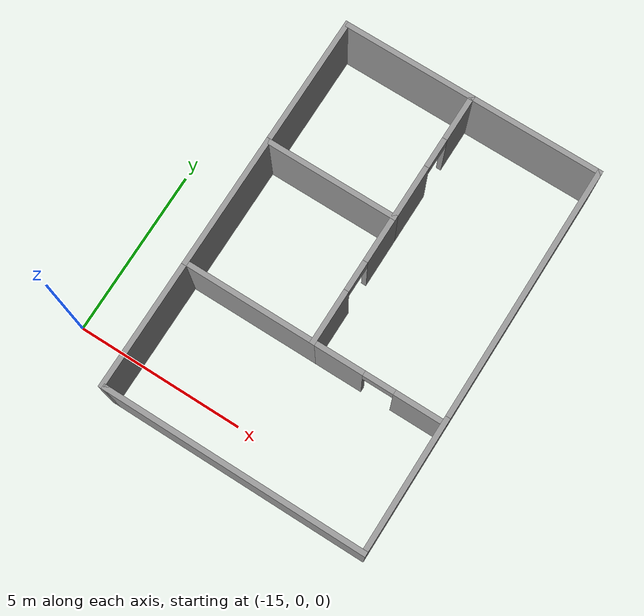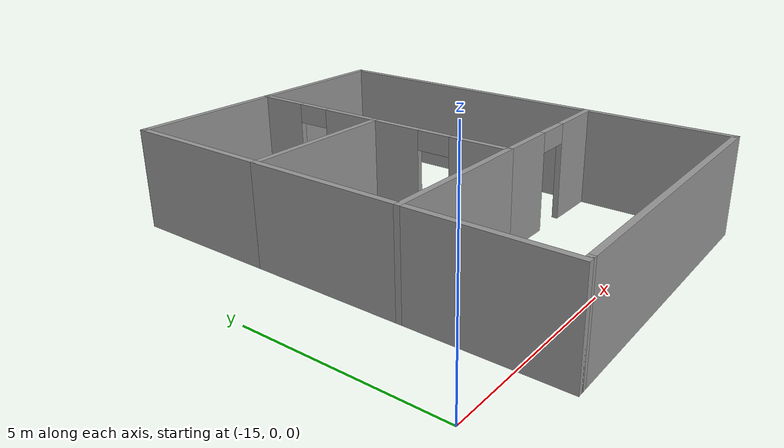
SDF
<?xml version='1.0'?>
<sdf version='1.7'>
  <model name='Room'>
    <pose>-6.5935 4.58824 0 0 -0 0</pose>
    <link name='Wall_41'>
      <collision name='Wall_41_Collision'>
        <geometry>
          <box>
            <size>4 0.15 2.5</size>
          </box>
        </geometry>
        <pose>0 0 1.25 0 -0 0</pose>
      </collision>
      <visual name='Wall_41_Visual'>
        <pose>0 0 1.25 0 -0 0</pose>
        <geometry>
          <box>
            <size>4 0.15 2.5</size>
          </box>
        </geometry>
        <material>
          <script>
            <uri>file://media/materials/scripts/gazebo.material</uri>
            <name>Gazebo/Grey</name>
          </script>
          <ambient>1 1 1 1</ambient>
        </material>
        <meta>
          <layer>0</layer>
        </meta>
      </visual>
      <pose>-4.5935 1.875 0 0 -0 0</pose>
    </link>
    <link name='Wall_42'>
      <pose>-2.6685 -0.05 0 0 -0 -1.5708</pose>
      <visual name='Wall_42_Visual_0'>
        <pose>-1.26796 0 1.25 0 -0 0</pose>
        <geometry>
          <box>
            <size>1.46408 0.15 2.5</size>
          </box>
        </geometry>
        <material>
          <script>
            <uri>file://media/materials/scripts/gazebo.material</uri>
            <name>Gazebo/Grey</name>
          </script>
          <ambient>1 1 1 1</ambient>
        </material>
        <meta>
          <layer>0</layer>
        </meta>
      </visual>
      <collision name='Wall_42_Collision_0'>
        <geometry>
          <box>
            <size>1.46408 0.15 2.5</size>
          </box>
        </geometry>
        <pose>-1.26796 0 1.25 0 -0 0</pose>
      </collision>
      <visual name='Wall_42_Visual_1'>
        <pose>1.18204 0 1.25 0 -0 0</pose>
        <geometry>
          <box>
            <size>1.63592 0.15 2.5</size>
          </box>
        </geometry>
        <material>
          <script>
            <uri>file://media/materials/scripts/gazebo.material</uri>
            <name>Gazebo/Grey</name>
          </script>
          <ambient>1 1 1 1</ambient>
        </material>
        <meta>
          <layer>0</layer>
        </meta>
      </visual>
      <collision name='Wall_42_Collision_1'>
        <geometry>
          <box>
            <size>1.63592 0.15 2.5</size>
          </box>
        </geometry>
        <pose>1.18204 0 1.25 0 -0 0</pose>
      </collision>
      <visual name='Wall_42_Visual_2'>
        <pose>-0.085917 0 2.25 0 -0 0</pose>
        <geometry>
          <box>
            <size>0.9 0.15 0.5</size>
          </box>
        </geometry>
        <material>
          <script>
            <uri>file://media/materials/scripts/gazebo.material</uri>
            <name>Gazebo/Grey</name>
          </script>
          <ambient>1 1 1 1</ambient>
        </material>
        <meta>
          <layer>0</layer>
        </meta>
      </visual>
      <collision name='Wall_42_Collision_2'>
        <geometry>
          <box>
            <size>0.9 0.15 0.5</size>
          </box>
        </geometry>
        <pose>-0.085917 0 2.25 0 -0 0</pose>
      </collision>
    </link>
    <link name='Wall_43'>
      <collision name='Wall_43_Collision'>
        <geometry>
          <box>
            <size>4 0.15 2.5</size>
          </box>
        </geometry>
        <pose>0 0 1.25 0 -0 0</pose>
      </collision>
      <visual name='Wall_43_Visual'>
        <pose>0 0 1.25 0 -0 0</pose>
        <geometry>
          <box>
            <size>4 0.15 2.5</size>
          </box>
        </geometry>
        <material>
          <script>
            <uri>file://media/materials/scripts/gazebo.material</uri>
            <name>Gazebo/Grey</name>
          </script>
          <ambient>1 1 1 1</ambient>
        </material>
        <meta>
          <layer>0</layer>
        </meta>
      </visual>
      <pose>-4.5935 -1.975 0 0 -0 3.14159</pose>
    </link>
    <link name='Wall_44'>
      <collision name='Wall_44_Collision'>
        <geometry>
          <box>
            <size>4 0.15 2.5</size>
          </box>
        </geometry>
        <pose>0 0 1.25 0 -0 0</pose>
      </collision>
      <visual name='Wall_44_Visual'>
        <pose>0 0 1.25 0 -0 0</pose>
        <geometry>
          <box>
            <size>4 0.15 2.5</size>
          </box>
        </geometry>
        <material>
          <script>
            <uri>file://media/materials/scripts/gazebo.material</uri>
            <name>Gazebo/Grey</name>
          </script>
          <ambient>1 1 1 1</ambient>
        </material>
        <meta>
          <layer>0</layer>
        </meta>
      </visual>
      <pose>-6.5185 -0.05 0 0 -0 1.5708</pose>
    </link>
    <link name='Wall_49'>
      <pose>-0.743497 -1.975 0 0 -0 3.14159</pose>
      <visual name='Wall_49_Visual_0'>
        <pose>-1.23831 0 1.25 0 -0 0</pose>
        <geometry>
          <box>
            <size>1.52338 0.15 2.5</size>
          </box>
        </geometry>
        <material>
          <script>
            <uri>file://media/materials/scripts/gazebo.material</uri>
            <name>Gazebo/Grey</name>
          </script>
          <ambient>1 1 1 1</ambient>
        </material>
        <meta>
          <layer>0</layer>
        </meta>
      </visual>
      <collision name='Wall_49_Collision_0'>
        <geometry>
          <box>
            <size>1.52338 0.15 2.5</size>
          </box>
        </geometry>
        <pose>-1.23831 0 1.25 0 -0 0</pose>
      </collision>
      <visual name='Wall_49_Visual_1'>
        <pose>1.21169 0 1.25 0 -0 0</pose>
        <geometry>
          <box>
            <size>1.57662 0.15 2.5</size>
          </box>
        </geometry>
        <material>
          <script>
            <uri>file://media/materials/scripts/gazebo.material</uri>
            <name>Gazebo/Grey</name>
          </script>
          <ambient>1 1 1 1</ambient>
        </material>
        <meta>
          <layer>0</layer>
        </meta>
      </visual>
      <collision name='Wall_49_Collision_1'>
        <geometry>
          <box>
            <size>1.57662 0.15 2.5</size>
          </box>
        </geometry>
        <pose>1.21169 0 1.25 0 -0 0</pose>
      </collision>
      <visual name='Wall_49_Visual_2'>
        <pose>-0.026623 0 2.25 0 -0 0</pose>
        <geometry>
          <box>
            <size>0.9 0.15 0.5</size>
          </box>
        </geometry>
        <material>
          <script>
            <uri>file://media/materials/scripts/gazebo.material</uri>
            <name>Gazebo/Grey</name>
          </script>
          <ambient>1 1 1 1</ambient>
        </material>
        <meta>
          <layer>0</layer>
        </meta>
      </visual>
      <collision name='Wall_49_Collision_2'>
        <geometry>
          <box>
            <size>0.9 0.15 0.5</size>
          </box>
        </geometry>
        <pose>-0.026623 0 2.25 0 -0 0</pose>
      </collision>
    </link>
    <link name='Wall_51'>
      <collision name='Wall_51_Collision'>
        <geometry>
          <box>
            <size>4 0.15 2.5</size>
          </box>
        </geometry>
        <pose>0 0 1.25 0 -0 0</pose>
      </collision>
      <visual name='Wall_51_Visual'>
        <pose>0 0 1.25 0 -0 0</pose>
        <geometry>
          <box>
            <size>4 0.15 2.5</size>
          </box>
        </geometry>
        <material>
          <script>
            <uri>file://media/materials/scripts/gazebo.material</uri>
            <name>Gazebo/Grey</name>
          </script>
          <ambient>1 1 1 1</ambient>
        </material>
        <meta>
          <layer>0</layer>
        </meta>
      </visual>
      <pose>-6.5185 3.8 0 0 -0 1.5708</pose>
    </link>
    <link name='Wall_52'>
      <collision name='Wall_52_Collision'>
        <geometry>
          <box>
            <size>4 0.15 2.5</size>
          </box>
        </geometry>
        <pose>0 0 1.25 0 -0 0</pose>
      </collision>
      <visual name='Wall_52_Visual'>
        <pose>0 0 1.25 0 -0 0</pose>
        <geometry>
          <box>
            <size>4 0.15 2.5</size>
          </box>
        </geometry>
        <material>
          <script>
            <uri>file://media/materials/scripts/gazebo.material</uri>
            <name>Gazebo/Grey</name>
          </script>
          <ambient>1 1 1 1</ambient>
        </material>
        <meta>
          <layer>0</layer>
        </meta>
      </visual>
      <pose>-4.5935 5.725 0 0 -0 0</pose>
    </link>
    <link name='Wall_53'>
      <pose>-2.6685 3.8 0 0 -0 -1.5708</pose>
      <visual name='Wall_53_Visual_0'>
        <pose>-1.28605 0 1.25 0 -0 0</pose>
        <geometry>
          <box>
            <size>1.42791 0.15 2.5</size>
          </box>
        </geometry>
        <material>
          <script>
            <uri>file://media/materials/scripts/gazebo.material</uri>
            <name>Gazebo/Grey</name>
          </script>
          <ambient>1 1 1 1</ambient>
        </material>
        <meta>
          <layer>0</layer>
        </meta>
      </visual>
      <collision name='Wall_53_Collision_0'>
        <geometry>
          <box>
            <size>1.42791 0.15 2.5</size>
          </box>
        </geometry>
        <pose>-1.28605 0 1.25 0 -0 0</pose>
      </collision>
      <visual name='Wall_53_Visual_1'>
        <pose>1.16395 0 1.25 0 -0 0</pose>
        <geometry>
          <box>
            <size>1.67209 0.15 2.5</size>
          </box>
        </geometry>
        <material>
          <script>
            <uri>file://media/materials/scripts/gazebo.material</uri>
            <name>Gazebo/Grey</name>
          </script>
          <ambient>1 1 1 1</ambient>
        </material>
        <meta>
          <layer>0</layer>
        </meta>
      </visual>
      <collision name='Wall_53_Collision_1'>
        <geometry>
          <box>
            <size>1.67209 0.15 2.5</size>
          </box>
        </geometry>
        <pose>1.16395 0 1.25 0 -0 0</pose>
      </collision>
      <visual name='Wall_53_Visual_2'>
        <pose>-0.122091 0 2.25 0 -0 0</pose>
        <geometry>
          <box>
            <size>0.9 0.15 0.5</size>
          </box>
        </geometry>
        <material>
          <script>
            <uri>file://media/materials/scripts/gazebo.material</uri>
            <name>Gazebo/Grey</name>
          </script>
          <ambient>1 1 1 1</ambient>
        </material>
        <meta>
          <layer>0</layer>
        </meta>
      </visual>
      <collision name='Wall_53_Collision_2'>
        <geometry>
          <box>
            <size>0.9 0.15 0.5</size>
          </box>
        </geometry>
        <pose>-0.122091 0 2.25 0 -0 0</pose>
      </collision>
    </link>
    <link name='Wall_61'>
      <collision name='Wall_61_Collision'>
        <geometry>
          <box>
            <size>0.15 0.15 2.5</size>
          </box>
        </geometry>
        <pose>0 0 1.25 0 -0 0</pose>
      </collision>
      <visual name='Wall_61_Visual'>
        <pose>0 0 1.25 0 -0 0</pose>
        <geometry>
          <box>
            <size>0.15 0.15 2.5</size>
          </box>
        </geometry>
        <material>
          <script>
            <uri>file://media/materials/scripts/gazebo.material</uri>
            <name>Gazebo/Grey</name>
          </script>
          <ambient>1 1 1 1</ambient>
        </material>
        <meta>
          <layer>0</layer>
        </meta>
      </visual>
      <pose>1.1815 5.725 0 0 -0 0</pose>
    </link>
    <link name='Wall_66'>
      <collision name='Wall_66_Collision'>
        <geometry>
          <box>
            <size>0.15 0.15 2.5</size>
          </box>
        </geometry>
        <pose>0 0 1.25 0 -0 0</pose>
      </collision>
      <visual name='Wall_66_Visual'>
        <pose>0 0 1.25 0 -0 0</pose>
        <geometry>
          <box>
            <size>0.15 0.15 2.5</size>
          </box>
        </geometry>
        <material>
          <script>
            <uri>file://media/materials/scripts/gazebo.material</uri>
            <name>Gazebo/Grey</name>
          </script>
          <ambient>1 1 1 1</ambient>
        </material>
        <meta>
          <layer>0</layer>
        </meta>
      </visual>
      <pose>1.1815 5.725 0 0 -0 0</pose>
    </link>
    <link name='Wall_79'>
      <collision name='Wall_79_Collision'>
        <geometry>
          <box>
            <size>4 0.15 2.5</size>
          </box>
        </geometry>
        <pose>0 0 1.25 0 -0 0</pose>
      </collision>
      <visual name='Wall_79_Visual'>
        <pose>0 0 1.25 0 -0 0</pose>
        <geometry>
          <box>
            <size>4 0.15 2.5</size>
          </box>
        </geometry>
        <material>
          <script>
            <uri>file://media/materials/scripts/gazebo.material</uri>
            <name>Gazebo/Grey</name>
          </script>
          <ambient>1 1 1 1</ambient>
        </material>
        <meta>
          <layer>0</layer>
        </meta>
      </visual>
      <pose>-0.743497 5.725 0 0 -0 0</pose>
    </link>
    <link name='Wall_80'>
      <collision name='Wall_80_Collision'>
        <geometry>
          <box>
            <size>7.75 0.15 2.5</size>
          </box>
        </geometry>
        <pose>0 0 1.25 0 -0 0</pose>
      </collision>
      <visual name='Wall_80_Visual'>
        <pose>0 0 1.25 0 -0 0</pose>
        <geometry>
          <box>
            <size>7.75 0.15 2.5</size>
          </box>
        </geometry>
        <material>
          <script>
            <uri>file://media/materials/scripts/gazebo.material</uri>
            <name>Gazebo/Grey</name>
          </script>
          <ambient>1 1 1 1</ambient>
        </material>
        <meta>
          <layer>0</layer>
        </meta>
      </visual>
      <pose>1.1815 1.925 0 0 -0 -1.5708</pose>
    </link>
    <link name='Wall_82'>
      <collision name='Wall_82_Collision'>
        <geometry>
          <box>
            <size>4 0.15 2.5</size>
          </box>
        </geometry>
        <pose>0 0 1.25 0 -0 0</pose>
      </collision>
      <visual name='Wall_82_Visual'>
        <pose>0 0 1.25 0 -0 0</pose>
        <geometry>
          <box>
            <size>4 0.15 2.5</size>
          </box>
        </geometry>
        <material>
          <script>
            <uri>file://media/materials/scripts/gazebo.material</uri>
            <name>Gazebo/Grey</name>
          </script>
          <ambient>1 1 1 1</ambient>
        </material>
        <meta>
          <layer>0</layer>
        </meta>
      </visual>
      <pose>1.1815 -3.8 0 0 -0 -1.5708</pose>
    </link>
    <link name='Wall_89'>
      <collision name='Wall_89_Collision'>
        <geometry>
          <box>
            <size>3.9 0.15 2.5</size>
          </box>
        </geometry>
        <pose>0 0 1.25 0 -0 0</pose>
      </collision>
      <visual name='Wall_89_Visual'>
        <pose>0 0 1.25 0 -0 0</pose>
        <geometry>
          <box>
            <size>3.9 0.15 2.5</size>
          </box>
        </geometry>
        <material>
          <script>
            <uri>file://media/materials/scripts/gazebo.material</uri>
            <name>Gazebo/Grey</name>
          </script>
          <ambient>1 1 1 1</ambient>
        </material>
        <meta>
          <layer>0</layer>
        </meta>
      </visual>
      <pose>-6.5185 -3.85 0 0 -0 -1.5708</pose>
    </link>
    <link name='Wall_91'>
      <collision name='Wall_91_Collision'>
        <geometry>
          <box>
            <size>7.75 0.15 2.5</size>
          </box>
        </geometry>
        <pose>0 0 1.25 0 -0 0</pose>
      </collision>
      <visual name='Wall_91_Visual'>
        <pose>0 0 1.25 0 -0 0</pose>
        <geometry>
          <box>
            <size>7.75 0.15 2.5</size>
          </box>
        </geometry>
        <material>
          <script>
            <uri>file://media/materials/scripts/gazebo.material</uri>
            <name>Gazebo/Grey</name>
          </script>
          <ambient>1 1 1 1</ambient>
        </material>
        <meta>
          <layer>0</layer>
        </meta>
      </visual>
      <pose>-2.6185 -5.725 0 0 -0 3.14159</pose>
    </link>
    <link name='Wall_92'>
      <collision name='Wall_92_Collision'>
        <geometry>
          <box>
            <size>0.15 0.15 2.5</size>
          </box>
        </geometry>
        <pose>0 0 1.25 0 -0 0</pose>
      </collision>
      <visual name='Wall_92_Visual'>
        <pose>0 0 1.25 0 -0 0</pose>
        <geometry>
          <box>
            <size>0.15 0.15 2.5</size>
          </box>
        </geometry>
        <material>
          <script>
            <uri>file://media/materials/scripts/gazebo.material</uri>
            <name>Gazebo/Grey</name>
          </script>
          <ambient>1 1 1 1</ambient>
        </material>
        <meta>
          <layer>0</layer>
        </meta>
      </visual>
      <pose>-6.4185 -5.725 0 0 -0 0</pose>
    </link>
    <static>1</static>
  </model>
</sdf>
